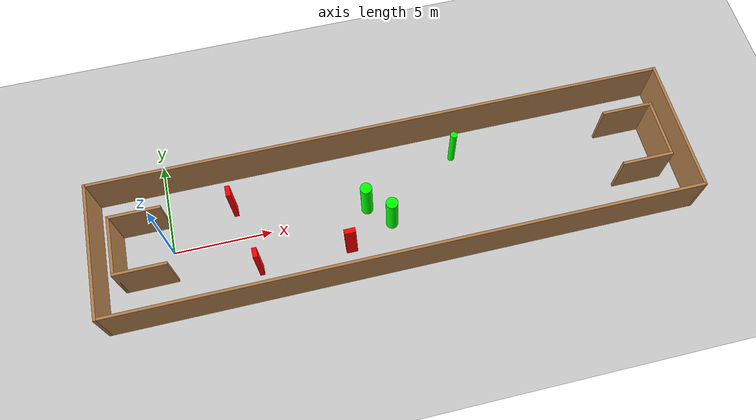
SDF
<sdf version="1.7">
 <world name="default">
  <light name="sun" type="directional">
   <pose>0 0 10 0 -0 0</pose>
   <diffuse>0.8 0.8 0.8 1</diffuse>
   <specular>0.2 0.2 0.2 1</specular>
   <attenuation>
    <range>1000</range>
    <constant>0.9</constant>
    <linear>0.01</linear>
    <quadratic>0.001</quadratic>
   </attenuation>
   <direction>-0.5 0.1 -0.9</direction>
   <spot><inner_angle>0</inner_angle><outer_angle>0</outer_angle><falloff>0</falloff></spot>
  </light>
  <model name="ground_plane">
   <static>1</static>
   <link name="link">
    <collision name="collision">
     <geometry><plane><normal>0 0 1</normal><size>100 100</size></plane></geometry>
     <surface>
      <contact><collide_bitmask>65535</collide_bitmask></contact>
      <friction><ode><mu>100</mu><mu2>50</mu2></ode></friction>
     </surface>
    </collision>
    <visual name="visual">
     <cast_shadows>0</cast_shadows>
     <geometry><plane><normal>0 0 1</normal><size>100 100</size></plane></geometry>
     <material>
      <script><uri>file://media/materials/scripts/gazebo.material</uri><name>Gazebo/Grey</name></script>
     </material>
    </visual>
   </link>
  </model>
  <gravity>0 0 -9.8</gravity>
  <magnetic_field>6e-06 2.3e-05 -4.2e-05</magnetic_field>
  <atmosphere type="adiabatic"/>
  <physics type="ode">
   <max_step_size>0.001</max_step_size>
   <real_time_factor>1</real_time_factor>
   <real_time_update_rate>1000</real_time_update_rate>
  </physics>
  <scene><ambient>0.4 0.4 0.4 1</ambient><background>0.7 0.7 0.7 1</background><shadows>1</shadows></scene>
  <spherical_coordinates>
   <surface_model>EARTH_WGS84</surface_model>
   <latitude_deg>0</latitude_deg>
   <longitude_deg>0</longitude_deg>
   <elevation>0</elevation>
   <heading_deg>0</heading_deg>
  </spherical_coordinates>
  <model name="my_base_walls">
   <link name="Wall_0">
    <collision name="Wall_0_Collision">
     <geometry><box><size>7.15 0.15 2.5</size></box></geometry>
     <pose>0 0 1.25 0 -0 0</pose>
    </collision>
    <visual name="Wall_0_Visual">
     <pose>0 0 1.25 0 -0 0</pose>
     <geometry><box><size>7.15 0.15 2.5</size></box></geometry>
     <material>
      <script><uri>file://media/materials/scripts/gazebo.material</uri><name>Gazebo/Wood</name></script>
      <ambient>1 1 1 1</ambient>
     </material>
     <meta><layer>0</layer></meta>
    </visual>
    <pose>-15 0 0 0 -0 1.5708</pose>
   </link>
   <link name="Wall_10">
    <collision name="Wall_10_Collision">
     <geometry><box><size>2.65 0.15 2.5</size></box></geometry>
     <pose>0 0 1.25 0 -0 0</pose>
    </collision>
    <visual name="Wall_10_Visual">
     <pose>0 0 1.25 0 -0 0</pose>
     <geometry><box><size>2.65 0.15 2.5</size></box></geometry>
     <material>
      <script><uri>file://media/materials/scripts/gazebo.material</uri><name>Gazebo/Wood</name></script>
      <ambient>1 1 1 1</ambient>
     </material>
     <meta><layer>0</layer></meta>
    </visual>
    <pose>-12.75 -1.5 0 0 -0 0</pose>
   </link>
   <link name="Wall_12">
    <collision name="Wall_12_Collision">
     <geometry><box><size>2.65 0.15 2.5</size></box></geometry>
     <pose>0 0 1.25 0 -0 0</pose>
    </collision>
    <visual name="Wall_12_Visual">
     <pose>0 0 1.25 0 -0 0</pose>
     <geometry><box><size>2.65 0.15 2.5</size></box></geometry>
     <material>
      <script><uri>file://media/materials/scripts/gazebo.material</uri><name>Gazebo/Wood</name></script>
      <ambient>1 1 1 1</ambient>
     </material>
     <meta><layer>0</layer></meta>
    </visual>
    <pose>-12.75 1.5 0 0 -0 0</pose>
   </link>
   <link name="Wall_14">
    <collision name="Wall_14_Collision">
     <geometry><box><size>3.15 0.15 2.5</size></box></geometry>
     <pose>0 0 1.25 0 -0 0</pose>
    </collision>
    <visual name="Wall_14_Visual">
     <pose>0 0 1.25 0 -0 0</pose>
     <geometry><box><size>3.15 0.15 2.5</size></box></geometry>
     <material>
      <script><uri>file://media/materials/scripts/gazebo.material</uri><name>Gazebo/Wood</name></script>
      <ambient>1 1 1 1</ambient>
     </material>
     <meta><layer>0</layer></meta>
    </visual>
    <pose>14 0 0 0 -0 -1.5708</pose>
   </link>
   <link name="Wall_15">
    <collision name="Wall_15_Collision">
     <geometry><box><size>2.65 0.15 2.5</size></box></geometry>
     <pose>0 0 1.25 0 -0 0</pose>
    </collision>
    <visual name="Wall_15_Visual">
     <pose>0 0 1.25 0 -0 0</pose>
     <geometry><box><size>2.65 0.15 2.5</size></box></geometry>
     <material>
      <script><uri>file://media/materials/scripts/gazebo.material</uri><name>Gazebo/Wood</name></script>
      <ambient>1 1 1 1</ambient>
     </material>
     <meta><layer>0</layer></meta>
    </visual>
    <pose>12.75 -1.5 0 0 -0 3.14159</pose>
   </link>
   <link name="Wall_17">
    <collision name="Wall_17_Collision">
     <geometry><box><size>2.65 0.15 2.5</size></box></geometry>
     <pose>0 0 1.25 0 -0 0</pose>
    </collision>
    <visual name="Wall_17_Visual">
     <pose>0 0 1.25 0 -0 0</pose>
     <geometry><box><size>2.65 0.15 2.5</size></box></geometry>
     <material>
      <script><uri>file://media/materials/scripts/gazebo.material</uri><name>Gazebo/Wood</name></script>
      <ambient>1 1 1 1</ambient>
     </material>
     <meta><layer>0</layer></meta>
    </visual>
    <pose>12.75 1.5 0 0 -0 3.14159</pose>
   </link>
   <link name="Wall_2">
    <collision name="Wall_2_Collision">
     <geometry><box><size>30.15 0.15 2.5</size></box></geometry>
     <pose>0 0 1.25 0 -0 0</pose>
    </collision>
    <visual name="Wall_2_Visual">
     <pose>0 0 1.25 0 -0 0</pose>
     <geometry><box><size>30.15 0.15 2.5</size></box></geometry>
     <material>
      <script><uri>file://media/materials/scripts/gazebo.material</uri><name>Gazebo/Wood</name></script>
      <ambient>1 1 1 1</ambient>
     </material>
     <meta><layer>0</layer></meta>
    </visual>
    <pose>-0 -3.5 0 0 -0 0</pose>
   </link>
   <link name="Wall_4">
    <collision name="Wall_4_Collision">
     <geometry><box><size>30.15 0.15 2.5</size></box></geometry>
     <pose>0 0 1.25 0 -0 0</pose>
    </collision>
    <visual name="Wall_4_Visual">
     <pose>0 0 1.25 0 -0 0</pose>
     <geometry><box><size>30.15 0.15 2.5</size></box></geometry>
     <material>
      <script><uri>file://media/materials/scripts/gazebo.material</uri><name>Gazebo/Wood</name></script>
      <ambient>1 1 1 1</ambient>
     </material>
     <meta><layer>0</layer></meta>
    </visual>
    <pose>-0 3.5 0 0 -0 0</pose>
   </link>
   <link name="Wall_6">
    <collision name="Wall_6_Collision">
     <geometry><box><size>7.15 0.15 2.5</size></box></geometry>
     <pose>0 0 1.25 0 -0 0</pose>
    </collision>
    <visual name="Wall_6_Visual">
     <pose>0 0 1.25 0 -0 0</pose>
     <geometry><box><size>7.15 0.15 2.5</size></box></geometry>
     <material>
      <script><uri>file://media/materials/scripts/gazebo.material</uri><name>Gazebo/Wood</name></script>
      <ambient>1 1 1 1</ambient>
     </material>
     <meta><layer>0</layer></meta>
    </visual>
    <pose>15 0 0 0 -0 -1.5708</pose>
   </link>
   <link name="Wall_9">
    <collision name="Wall_9_Collision">
     <geometry><box><size>3.15 0.15 2.5</size></box></geometry>
     <pose>0 0 1.25 0 -0 0</pose>
    </collision>
    <visual name="Wall_9_Visual">
     <pose>0 0 1.25 0 -0 0</pose>
     <geometry><box><size>3.15 0.15 2.5</size></box></geometry>
     <material>
      <script><uri>file://media/materials/scripts/gazebo.material</uri><name>Gazebo/Wood</name></script>
      <ambient>1 1 1 1</ambient>
     </material>
     <meta><layer>0</layer></meta>
    </visual>
    <pose>-14 0 0 0 -0 -1.5708</pose>
   </link>
   <static>1</static>
   <pose>11.5 0 0 0 -0 0</pose>
  </model>
  <model name="cylinder1">
   <static>1</static>
   <link name="link">
    <inertial>
     <mass>1</mass>
     <inertia><ixx>0.5</ixx><ixy>0</ixy><ixz>0</ixz><iyy>0.5</iyy><iyz>0</iyz><izz>1</izz></inertia>
    </inertial>
    <collision name="collision">
     <geometry><cylinder><radius>0.3089333450954468</radius><length>2.5</length></cylinder></geometry>
    </collision>
    <visual name="visual">
     <geometry><cylinder><radius>0.3089333450954468</radius><length>2.5</length></cylinder></geometry>
     <material>
      <ambient>0 1 0 1</ambient>
      <diffuse>0 1 0 1</diffuse>
      <specular>0.1 0.1 0.1 1</specular>
      <emissive>0 0 0 0</emissive>
     </material>
    </visual>
   </link>
   <pose>11.13639312293587 -0.9315644535598859 1.25 0 0 0</pose>
  </model>
  <model name="cylinder2">
   <static>1</static>
   <link name="link">
    <inertial>
     <mass>1</mass>
     <inertia><ixx>0.5</ixx><ixy>0</ixy><ixz>0</ixz><iyy>0.5</iyy><iyz>0</iyz><izz>1</izz></inertia>
    </inertial>
    <collision name="collision">
     <geometry><cylinder><radius>0.17710345970041497</radius><length>2.5</length></cylinder></geometry>
    </collision>
    <visual name="visual">
     <geometry><cylinder><radius>0.17710345970041497</radius><length>2.5</length></cylinder></geometry>
     <material>
      <ambient>0 1 0 1</ambient>
      <diffuse>0 1 0 1</diffuse>
      <specular>0.1 0.1 0.1 1</specular>
      <emissive>0 0 0 0</emissive>
     </material>
    </visual>
   </link>
   <pose>15.086008927715785 2.053635461993542 1.25 0 0 0</pose>
  </model>
  <model name="cylinder3">
   <static>1</static>
   <link name="link">
    <inertial>
     <mass>1</mass>
     <inertia><ixx>0.5</ixx><ixy>0</ixy><ixz>0</ixz><iyy>0.5</iyy><iyz>0</iyz><izz>1</izz></inertia>
    </inertial>
    <collision name="collision">
     <geometry><cylinder><radius>0.30260221342870697</radius><length>2.5</length></cylinder></geometry>
    </collision>
    <visual name="visual">
     <geometry><cylinder><radius>0.30260221342870697</radius><length>2.5</length></cylinder></geometry>
     <material>
      <ambient>0 1 0 1</ambient>
      <diffuse>0 1 0 1</diffuse>
      <specular>0.1 0.1 0.1 1</specular>
      <emissive>0 0 0 0</emissive>
     </material>
    </visual>
   </link>
   <pose>10.064363873975147 0.14307546398718074 1.25 0 0 0</pose>
  </model>
  <model name="box1">
   <static>1</static>
   <link name="link">
    <inertial>
     <mass>1</mass>
     <inertia><ixx>0.083</ixx><ixy>0</ixy><ixz>0</ixz><iyy>0.083</iyy><iyz>0</iyz><izz>0.083</izz></inertia>
    </inertial>
    <collision name="collision">
     <geometry><box><size>0.23757183151924557 0.5556020146689561 2.5</size></box></geometry>
    </collision>
    <visual name="visual">
     <geometry><box><size>0.23757183151924557 0.5556020146689561 2.5</size></box></geometry>
     <material>
      <ambient>1 0 0 1</ambient>
      <diffuse>1 0 0 1</diffuse>
      <specular>0.1 0.1 0.1 1</specular>
      <emissive>0 0 0 0</emissive>
     </material>
    </visual>
    <sensor name="my_contact" type="contact">
     <contact><collision>box_collision</collision><topic>__default_topic__</topic></contact>
    </sensor>
   </link>
   <pose>3.393056842312923 1.5797191841691811 1.25 0 0 0</pose>
  </model>
  <model name="box2">
   <static>1</static>
   <link name="link">
    <inertial>
     <mass>1</mass>
     <inertia><ixx>0.083</ixx><ixy>0</ixy><ixz>0</ixz><iyy>0.083</iyy><iyz>0</iyz><izz>0.083</izz></inertia>
    </inertial>
    <collision name="collision">
     <geometry><box><size>0.2346805799207593 0.5026252434727276 2.5</size></box></geometry>
    </collision>
    <visual name="visual">
     <geometry><box><size>0.2346805799207593 0.5026252434727276 2.5</size></box></geometry>
     <material>
      <ambient>1 0 0 1</ambient>
      <diffuse>1 0 0 1</diffuse>
      <specular>0.1 0.1 0.1 1</specular>
      <emissive>0 0 0 0</emissive>
     </material>
    </visual>
    <sensor name="my_contact" type="contact">
     <contact><collision>box_collision</collision><topic>__default_topic__</topic></contact>
    </sensor>
   </link>
   <pose>4.173612887947993 -1.9452031656186062 1.25 0 0 0</pose>
  </model>
  <model name="box3">
   <static>1</static>
   <link name="link">
    <inertial>
     <mass>1</mass>
     <inertia><ixx>0.083</ixx><ixy>0</ixy><ixz>0</ixz><iyy>0.083</iyy><iyz>0</iyz><izz>0.083</izz></inertia>
    </inertial>
    <collision name="collision">
     <geometry><box><size>0.5696059562409659 0.25778876407726253 2.5</size></box></geometry>
    </collision>
    <visual name="visual">
     <geometry><box><size>0.5696059562409659 0.25778876407726253 2.5</size></box></geometry>
     <material>
      <ambient>1 0 0 1</ambient>
      <diffuse>1 0 0 1</diffuse>
      <specular>0.1 0.1 0.1 1</specular>
      <emissive>0 0 0 0</emissive>
     </material>
    </visual>
    <sensor name="my_contact" type="contact">
     <contact><collision>box_collision</collision><topic>__default_topic__</topic></contact>
    </sensor>
   </link>
   <pose>8.809316108007382 -1.9092088320475535 1.25 0 0 0</pose>
  </model>
 </world>
</sdf>
